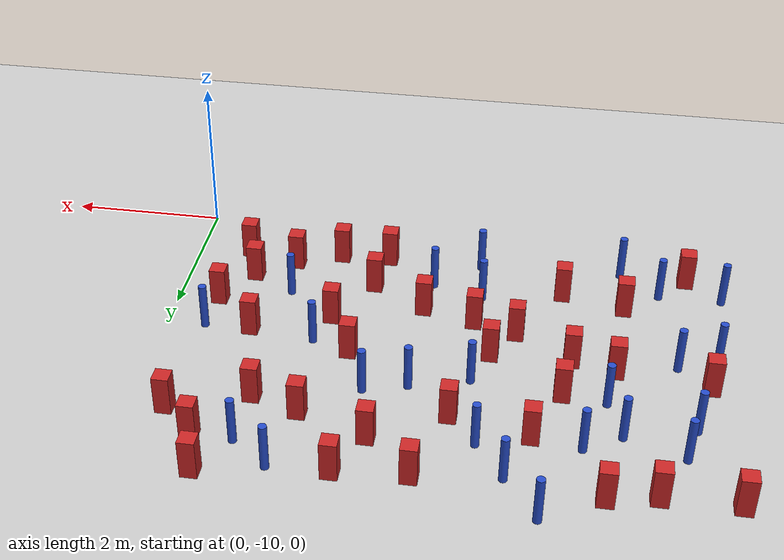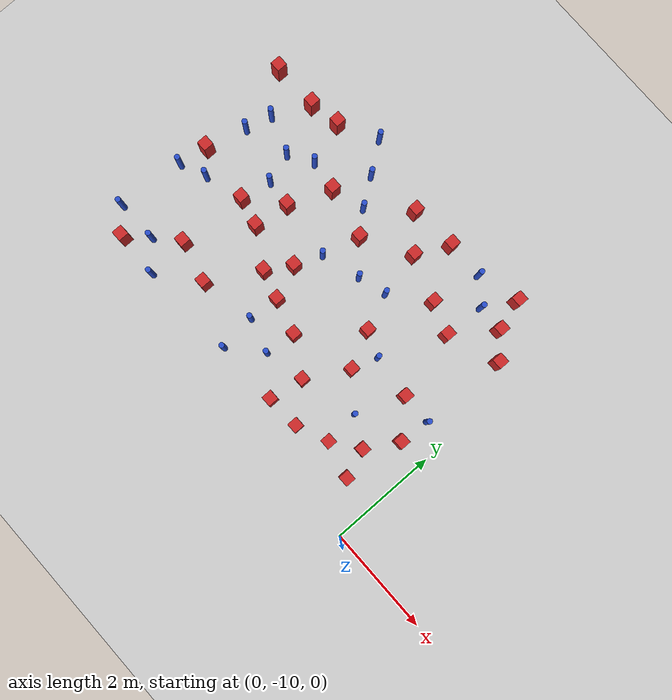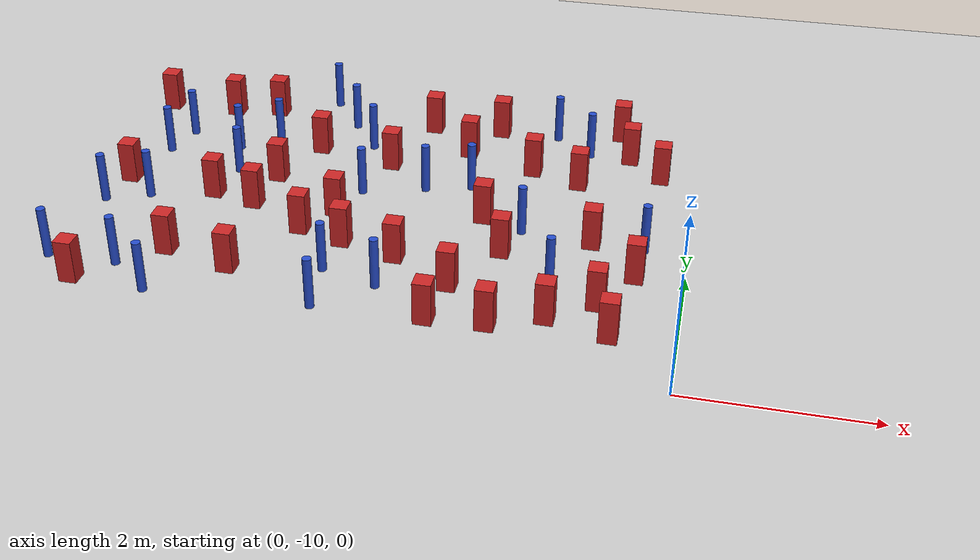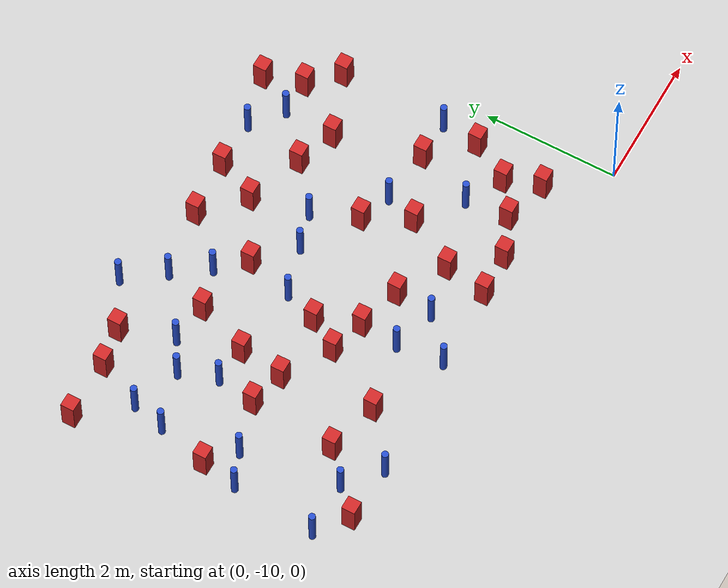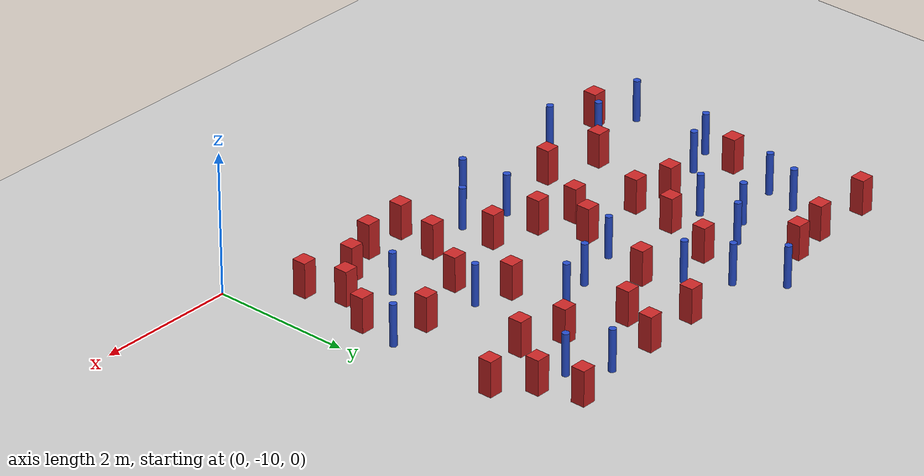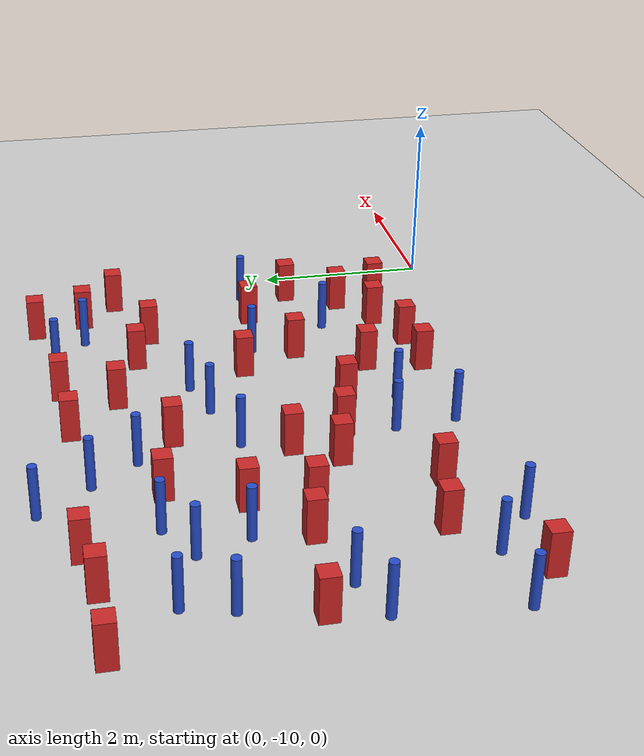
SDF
<sdf version="1.6">
 <world name="default">
  <model name="ground_plane">
   <static>1</static>
   <link name="link">
    <collision name="collision">
     <geometry><plane><normal>0 0 1</normal><size>100 100</size></plane></geometry>
     <surface><friction><ode><mu>100</mu><mu2>50</mu2></ode></friction></surface>
    </collision>
    <visual name="visual">
     <cast_shadows>0</cast_shadows>
     <geometry><plane><normal>0 0 1</normal><size>100 100</size></plane></geometry>
     <material>
      <ambient>1.0 1.0 1.0 1.0</ambient>
      <diffuse>0.8 0.8 0.8 1.0</diffuse>
      <specular>0.01 0.01 0.01 1.000000</specular>
     </material>
    </visual>
   </link>
  </model>
  <model name="pole_obstacle0">
   <static>true</static>
   <pose>-5.68199966664 -6.26441444535 2.88873142074e-08 -9.90536690842e-09 4.60219948965e-07 -1.20965994976e-07</pose>
   <link name="link">
    <pose>0 0 0.3 0 -0 0</pose>
    <inertial>
     <mass>1</mass>
     <inertia><ixx>0.145833</ixx><ixy>0</ixy><ixz>0</ixz><iyy>0.145833</iyy><iyz>0</iyz><izz>0.125</izz></inertia>
    </inertial>
    <collision name="collision">
     <geometry><cylinder><radius>0.05</radius><length>.6</length></cylinder></geometry>
    </collision>
    <visual name="visual">
     <geometry><cylinder><radius>0.05</radius><length>.6</length></cylinder></geometry>
     <material>
      <script><name>Gazebo/Blue</name><uri>file://media/materials/scripts/gazebo.material</uri></script>
     </material>
    </visual>
   </link>
  </model>
  <model name="pole_obstacle3">
   <static>true</static>
   <pose>-5.23848355303 -5.99416377618 2.88873142074e-08 -9.90536690842e-09 4.60219948965e-07 -1.20965994976e-07</pose>
   <link name="link">
    <pose>0 0 0.3 0 -0 0</pose>
    <inertial>
     <mass>1</mass>
     <inertia><ixx>0.145833</ixx><ixy>0</ixy><ixz>0</ixz><iyy>0.145833</iyy><iyz>0</iyz><izz>0.125</izz></inertia>
    </inertial>
    <collision name="collision">
     <geometry><cylinder><radius>0.05</radius><length>.6</length></cylinder></geometry>
    </collision>
    <visual name="visual">
     <geometry><cylinder><radius>0.05</radius><length>.6</length></cylinder></geometry>
     <material>
      <script><name>Gazebo/Blue</name><uri>file://media/materials/scripts/gazebo.material</uri></script>
     </material>
    </visual>
   </link>
  </model>
  <model name="square_post_obstacle6">
   <static>true</static>
   <pose>-6.45934820761 -9.41857495055 8.22691968438e-08 7.22125133819e-06 -7.54495500217e-07 2.29674213826e-05</pose>
   <link name="link">
    <pose>0 0 0.25 0 -0 0</pose>
    <inertial>
     <mass>100</mass>
     <inertia>
      <ixx>0.166667</ixx>
      <ixy>0</ixy>
      <ixz>0</ixz>
      <iyy>0.166667</iyy>
      <iyz>0</iyz>
      <izz>0.166667</izz>
     </inertia>
    </inertial>
    <collision name="collision"><geometry><box><size>.2 .2 .5</size></box></geometry></collision>
    <visual name="visual">
     <geometry><box><size>.2 .2 .5</size></box></geometry>
     <material>
      <script><name>Gazebo/Red</name><uri>file://media/materials/scripts/gazebo.material</uri></script>
     </material>
    </visual>
   </link>
  </model>
  <model name="square_post_obstacle9">
   <static>true</static>
   <pose>-4.65726586537 -6.07960110968 8.22691968438e-08 7.2212513382e-06 -7.54495500217e-07 2.29674213826e-05</pose>
   <link name="link">
    <pose>0 0 0.25 0 -0 0</pose>
    <inertial>
     <mass>100</mass>
     <inertia>
      <ixx>0.166667</ixx>
      <ixy>0</ixy>
      <ixz>0</ixz>
      <iyy>0.166667</iyy>
      <iyz>0</iyz>
      <izz>0.166667</izz>
     </inertia>
    </inertial>
    <collision name="collision"><geometry><box><size>.2 .2 .5</size></box></geometry></collision>
    <visual name="visual">
     <geometry><box><size>.2 .2 .5</size></box></geometry>
     <material>
      <script><name>Gazebo/Red</name><uri>file://media/materials/scripts/gazebo.material</uri></script>
     </material>
    </visual>
   </link>
  </model>
  <model name="square_post_obstacle16">
   <static>true</static>
   <pose>-5.66816697203 -8.67683960717 8.22691968438e-08 7.22125133819e-06 -7.54495500217e-07 2.29674213826e-05</pose>
   <link name="link">
    <pose>0 0 0.25 0 -0 0</pose>
    <inertial>
     <mass>100</mass>
     <inertia>
      <ixx>0.166667</ixx>
      <ixy>0</ixy>
      <ixz>0</ixz>
      <iyy>0.166667</iyy>
      <iyz>0</iyz>
      <izz>0.166667</izz>
     </inertia>
    </inertial>
    <collision name="collision"><geometry><box><size>.2 .2 .5</size></box></geometry></collision>
    <visual name="visual">
     <geometry><box><size>.2 .2 .5</size></box></geometry>
     <material>
      <script><name>Gazebo/Red</name><uri>file://media/materials/scripts/gazebo.material</uri></script>
     </material>
    </visual>
   </link>
  </model>
  <model name="square_post_obstacle19">
   <static>true</static>
   <pose>-0.851965355278 -5.54211889057 8.22691968438e-08 7.22125133819e-06 -7.54495500217e-07 2.29674213826e-05</pose>
   <link name="link">
    <pose>0 0 0.25 0 -0 0</pose>
    <inertial>
     <mass>100</mass>
     <inertia>
      <ixx>0.166667</ixx>
      <ixy>0</ixy>
      <ixz>0</ixz>
      <iyy>0.166667</iyy>
      <iyz>0</iyz>
      <izz>0.166667</izz>
     </inertia>
    </inertial>
    <collision name="collision"><geometry><box><size>.2 .2 .5</size></box></geometry></collision>
    <visual name="visual">
     <geometry><box><size>.2 .2 .5</size></box></geometry>
     <material>
      <script><name>Gazebo/Red</name><uri>file://media/materials/scripts/gazebo.material</uri></script>
     </material>
    </visual>
   </link>
  </model>
  <model name="square_post_obstacle23">
   <static>true</static>
   <pose>-1.39485794637 -6.29237957162 8.22691968438e-08 7.2212513382e-06 -7.54495500217e-07 2.29674213826e-05</pose>
   <link name="link">
    <pose>0 0 0.25 0 -0 0</pose>
    <inertial>
     <mass>100</mass>
     <inertia>
      <ixx>0.166667</ixx>
      <ixy>0</ixy>
      <ixz>0</ixz>
      <iyy>0.166667</iyy>
      <iyz>0</iyz>
      <izz>0.166667</izz>
     </inertia>
    </inertial>
    <collision name="collision"><geometry><box><size>.2 .2 .5</size></box></geometry></collision>
    <visual name="visual">
     <geometry><box><size>.2 .2 .5</size></box></geometry>
     <material>
      <script><name>Gazebo/Red</name><uri>file://media/materials/scripts/gazebo.material</uri></script>
     </material>
    </visual>
   </link>
  </model>
  <model name="pole_obstacle17">
   <static>true</static>
   <pose>-0.486869030169 -7.56090047871 2.88873142074e-08 -9.90536689758e-09 4.60219948991e-07 -1.20965994957e-07</pose>
   <link name="link">
    <pose>0 0 0.3 0 -0 0</pose>
    <inertial>
     <mass>1</mass>
     <inertia><ixx>0.145833</ixx><ixy>0</ixy><ixz>0</ixz><iyy>0.145833</iyy><iyz>0</iyz><izz>0.125</izz></inertia>
    </inertial>
    <collision name="collision">
     <geometry><cylinder><radius>0.05</radius><length>.6</length></cylinder></geometry>
    </collision>
    <visual name="visual">
     <geometry><cylinder><radius>0.05</radius><length>.6</length></cylinder></geometry>
     <material>
      <script><name>Gazebo/Blue</name><uri>file://media/materials/scripts/gazebo.material</uri></script>
     </material>
    </visual>
   </link>
  </model>
  <model name="square_post_obstacle27">
   <static>true</static>
   <pose>-2.36240675785 -7.28221465207 8.22691968438e-08 7.22125133819e-06 -7.54495500217e-07 2.29674213826e-05</pose>
   <link name="link">
    <pose>0 0 0.25 0 -0 0</pose>
    <inertial>
     <mass>100</mass>
     <inertia>
      <ixx>0.166667</ixx>
      <ixy>0</ixy>
      <ixz>0</ixz>
      <iyy>0.166667</iyy>
      <iyz>0</iyz>
      <izz>0.166667</izz>
     </inertia>
    </inertial>
    <collision name="collision"><geometry><box><size>.2 .2 .5</size></box></geometry></collision>
    <visual name="visual">
     <geometry><box><size>.2 .2 .5</size></box></geometry>
     <material>
      <script><name>Gazebo/Red</name><uri>file://media/materials/scripts/gazebo.material</uri></script>
     </material>
    </visual>
   </link>
  </model>
  <model name="pole_obstacle30">
   <static>true</static>
   <pose>-6.80623444083 -7.80608476634 2.88873142074e-08 -9.90536690842e-09 4.60219948965e-07 -1.20965994976e-07</pose>
   <link name="link">
    <pose>0 0 0.3 0 -0 0</pose>
    <inertial>
     <mass>1</mass>
     <inertia><ixx>0.145833</ixx><ixy>0</ixy><ixz>0</ixz><iyy>0.145833</iyy><iyz>0</iyz><izz>0.125</izz></inertia>
    </inertial>
    <collision name="collision">
     <geometry><cylinder><radius>0.05</radius><length>.6</length></cylinder></geometry>
    </collision>
    <visual name="visual">
     <geometry><cylinder><radius>0.05</radius><length>.6</length></cylinder></geometry>
     <material>
      <script><name>Gazebo/Blue</name><uri>file://media/materials/scripts/gazebo.material</uri></script>
     </material>
    </visual>
   </link>
  </model>
  <model name="pole_obstacle44">
   <static>true</static>
   <pose>-3.86706845383 -8.67823417328 2.88873142074e-08 -9.90536692318e-09 4.6021994893e-07 -1.20965994988e-07</pose>
   <link name="link">
    <pose>0 0 0.3 0 -0 0</pose>
    <inertial>
     <mass>1</mass>
     <inertia><ixx>0.145833</ixx><ixy>0</ixy><ixz>0</ixz><iyy>0.145833</iyy><iyz>0</iyz><izz>0.125</izz></inertia>
    </inertial>
    <collision name="collision">
     <geometry><cylinder><radius>0.05</radius><length>.6</length></cylinder></geometry>
    </collision>
    <visual name="visual">
     <geometry><cylinder><radius>0.05</radius><length>.6</length></cylinder></geometry>
     <material>
      <script><name>Gazebo/Blue</name><uri>file://media/materials/scripts/gazebo.material</uri></script>
     </material>
    </visual>
   </link>
  </model>
  <model name="square_post_obstacle42">
   <static>true</static>
   <pose>-6.07014322825 -5.33068150196 8.22691968438e-08 7.22125133819e-06 -7.54495500217e-07 2.29674213826e-05</pose>
   <link name="link">
    <pose>0 0 0.25 0 -0 0</pose>
    <inertial>
     <mass>100</mass>
     <inertia>
      <ixx>0.166667</ixx>
      <ixy>0</ixy>
      <ixz>0</ixz>
      <iyy>0.166667</iyy>
      <iyz>0</iyz>
      <izz>0.166667</izz>
     </inertia>
    </inertial>
    <collision name="collision"><geometry><box><size>.2 .2 .5</size></box></geometry></collision>
    <visual name="visual">
     <geometry><box><size>.2 .2 .5</size></box></geometry>
     <material>
      <script><name>Gazebo/Red</name><uri>file://media/materials/scripts/gazebo.material</uri></script>
     </material>
    </visual>
   </link>
  </model>
  <model name="square_post_obstacle46">
   <static>true</static>
   <pose>-6.70570960798 -7.26275233673 8.22691968438e-08 7.2212513382e-06 -7.54495500217e-07 2.29674213826e-05</pose>
   <link name="link">
    <pose>0 0 0.25 0 -0 0</pose>
    <inertial>
     <mass>100</mass>
     <inertia>
      <ixx>0.166667</ixx>
      <ixy>0</ixy>
      <ixz>0</ixz>
      <iyy>0.166667</iyy>
      <iyz>0</iyz>
      <izz>0.166667</izz>
     </inertia>
    </inertial>
    <collision name="collision"><geometry><box><size>.2 .2 .5</size></box></geometry></collision>
    <visual name="visual">
     <geometry><box><size>.2 .2 .5</size></box></geometry>
     <material>
      <script><name>Gazebo/Red</name><uri>file://media/materials/scripts/gazebo.material</uri></script>
     </material>
    </visual>
   </link>
  </model>
  <model name="square_post_obstacle50">
   <static>true</static>
   <pose>-5.50018695501 -5.22416886498 8.22691968438e-08 7.22125133819e-06 -7.54495500217e-07 2.29674213826e-05</pose>
   <link name="link">
    <pose>0 0 0.25 0 -0 0</pose>
    <inertial>
     <mass>100</mass>
     <inertia>
      <ixx>0.166667</ixx>
      <ixy>0</ixy>
      <ixz>0</ixz>
      <iyy>0.166667</iyy>
      <iyz>0</iyz>
      <izz>0.166667</izz>
     </inertia>
    </inertial>
    <collision name="collision"><geometry><box><size>.2 .2 .5</size></box></geometry></collision>
    <visual name="visual">
     <geometry><box><size>.2 .2 .5</size></box></geometry>
     <material>
      <script><name>Gazebo/Red</name><uri>file://media/materials/scripts/gazebo.material</uri></script>
     </material>
    </visual>
   </link>
  </model>
  <model name="pole_obstacle52">
   <static>true</static>
   <pose>-4.80466122462 -4.833465259 2.88873142074e-08 -9.90536690842e-09 4.60219948965e-07 -1.20965994976e-07</pose>
   <link name="link">
    <pose>0 0 0.3 0 -0 0</pose>
    <inertial>
     <mass>1</mass>
     <inertia><ixx>0.145833</ixx><ixy>0</ixy><ixz>0</ixz><iyy>0.145833</iyy><iyz>0</iyz><izz>0.125</izz></inertia>
    </inertial>
    <collision name="collision">
     <geometry><cylinder><radius>0.05</radius><length>.6</length></cylinder></geometry>
    </collision>
    <visual name="visual">
     <geometry><cylinder><radius>0.05</radius><length>.6</length></cylinder></geometry>
     <material>
      <script><name>Gazebo/Blue</name><uri>file://media/materials/scripts/gazebo.material</uri></script>
     </material>
    </visual>
   </link>
  </model>
  <model name="pole_obstacle64">
   <static>true</static>
   <pose>-1.80755796735 -5.16416907288 2.88873142074e-08 -9.90536689852e-09 4.60219948989e-07 -1.2096599496e-07</pose>
   <link name="link">
    <pose>0 0 0.3 0 -0 0</pose>
    <inertial>
     <mass>1</mass>
     <inertia><ixx>0.145833</ixx><ixy>0</ixy><ixz>0</ixz><iyy>0.145833</iyy><iyz>0</iyz><izz>0.125</izz></inertia>
    </inertial>
    <collision name="collision">
     <geometry><cylinder><radius>0.05</radius><length>.6</length></cylinder></geometry>
    </collision>
    <visual name="visual">
     <geometry><cylinder><radius>0.05</radius><length>.6</length></cylinder></geometry>
     <material>
      <script><name>Gazebo/Blue</name><uri>file://media/materials/scripts/gazebo.material</uri></script>
     </material>
    </visual>
   </link>
  </model>
  <model name="pole_obstacle65">
   <static>true</static>
   <pose>-3.88680683641 -6.98886133244 2.88873142074e-08 -9.90536689859e-09 4.60219948989e-07 -1.20965994961e-07</pose>
   <link name="link">
    <pose>0 0 0.3 0 -0 0</pose>
    <inertial>
     <mass>1</mass>
     <inertia><ixx>0.145833</ixx><ixy>0</ixy><ixz>0</ixz><iyy>0.145833</iyy><iyz>0</iyz><izz>0.125</izz></inertia>
    </inertial>
    <collision name="collision">
     <geometry><cylinder><radius>0.05</radius><length>.6</length></cylinder></geometry>
    </collision>
    <visual name="visual">
     <geometry><cylinder><radius>0.05</radius><length>.6</length></cylinder></geometry>
     <material>
      <script><name>Gazebo/Blue</name><uri>file://media/materials/scripts/gazebo.material</uri></script>
     </material>
    </visual>
   </link>
  </model>
  <model name="pole_obstacle72">
   <static>true</static>
   <pose>-6.51773497697 -6.50194190076 2.88873142074e-08 -9.90536690842e-09 4.60219948965e-07 -1.20965994976e-07</pose>
   <link name="link">
    <pose>0 0 0.3 0 -0 0</pose>
    <inertial>
     <mass>1</mass>
     <inertia><ixx>0.145833</ixx><ixy>0</ixy><ixz>0</ixz><iyy>0.145833</iyy><iyz>0</iyz><izz>0.125</izz></inertia>
    </inertial>
    <collision name="collision">
     <geometry><cylinder><radius>0.05</radius><length>.6</length></cylinder></geometry>
    </collision>
    <visual name="visual">
     <geometry><cylinder><radius>0.05</radius><length>.6</length></cylinder></geometry>
     <material>
      <script><name>Gazebo/Blue</name><uri>file://media/materials/scripts/gazebo.material</uri></script>
     </material>
    </visual>
   </link>
  </model>
  <model name="pole_obstacle78">
   <static>true</static>
   <pose>-6.39251049745 -6.00956394772 2.88873142074e-08 -9.90536690842e-09 4.60219948965e-07 -1.20965994976e-07</pose>
   <link name="link">
    <pose>0 0 0.3 0 -0 0</pose>
    <inertial>
     <mass>1</mass>
     <inertia><ixx>0.145833</ixx><ixy>0</ixy><ixz>0</ixz><iyy>0.145833</iyy><iyz>0</iyz><izz>0.125</izz></inertia>
    </inertial>
    <collision name="collision">
     <geometry><cylinder><radius>0.05</radius><length>.6</length></cylinder></geometry>
    </collision>
    <visual name="visual">
     <geometry><cylinder><radius>0.05</radius><length>.6</length></cylinder></geometry>
     <material>
      <script><name>Gazebo/Blue</name><uri>file://media/materials/scripts/gazebo.material</uri></script>
     </material>
    </visual>
   </link>
  </model>
  <model name="pole_obstacle80">
   <static>true</static>
   <pose>-4.04554786163 -5.88872726581 2.88873142074e-08 -9.90536691069e-09 4.6021994896e-07 -1.20965994979e-07</pose>
   <link name="link">
    <pose>0 0 0.3 0 -0 0</pose>
    <inertial>
     <mass>1</mass>
     <inertia><ixx>0.145833</ixx><ixy>0</ixy><ixz>0</ixz><iyy>0.145833</iyy><iyz>0</iyz><izz>0.125</izz></inertia>
    </inertial>
    <collision name="collision">
     <geometry><cylinder><radius>0.05</radius><length>.6</length></cylinder></geometry>
    </collision>
    <visual name="visual">
     <geometry><cylinder><radius>0.05</radius><length>.6</length></cylinder></geometry>
     <material>
      <script><name>Gazebo/Blue</name><uri>file://media/materials/scripts/gazebo.material</uri></script>
     </material>
    </visual>
   </link>
  </model>
  <model name="pole_obstacle83">
   <static>true</static>
   <pose>-6.32376703337 -7.60749913062 2.88873142074e-08 -9.90536690842e-09 4.60219948965e-07 -1.20965994976e-07</pose>
   <link name="link">
    <pose>0 0 0.3 0 -0 0</pose>
    <inertial>
     <mass>1</mass>
     <inertia><ixx>0.145833</ixx><ixy>0</ixy><ixz>0</ixz><iyy>0.145833</iyy><iyz>0</iyz><izz>0.125</izz></inertia>
    </inertial>
    <collision name="collision">
     <geometry><cylinder><radius>0.05</radius><length>.6</length></cylinder></geometry>
    </collision>
    <visual name="visual">
     <geometry><cylinder><radius>0.05</radius><length>.6</length></cylinder></geometry>
     <material>
      <script><name>Gazebo/Blue</name><uri>file://media/materials/scripts/gazebo.material</uri></script>
     </material>
    </visual>
   </link>
  </model>
  <model name="square_post_obstacle85">
   <static>true</static>
   <pose>-4.88569826754 -8.87693878102 8.22691968438e-08 7.22125133819e-06 -7.54495500217e-07 2.29674213826e-05</pose>
   <link name="link">
    <pose>0 0 0.25 0 -0 0</pose>
    <inertial>
     <mass>100</mass>
     <inertia>
      <ixx>0.166667</ixx>
      <ixy>0</ixy>
      <ixz>0</ixz>
      <iyy>0.166667</iyy>
      <iyz>0</iyz>
      <izz>0.166667</izz>
     </inertia>
    </inertial>
    <collision name="collision"><geometry><box><size>.2 .2 .5</size></box></geometry></collision>
    <visual name="visual">
     <geometry><box><size>.2 .2 .5</size></box></geometry>
     <material>
      <script><name>Gazebo/Red</name><uri>file://media/materials/scripts/gazebo.material</uri></script>
     </material>
    </visual>
   </link>
  </model>
  <model name="pole_obstacle101">
   <static>true</static>
   <pose>-3.79245349203 -9.367421757 2.88873142074e-08 -9.90536692318e-09 4.6021994893e-07 -1.20965994988e-07</pose>
   <link name="link">
    <pose>0 0 0.3 0 -0 0</pose>
    <inertial>
     <mass>1</mass>
     <inertia><ixx>0.145833</ixx><ixy>0</ixy><ixz>0</ixz><iyy>0.145833</iyy><iyz>0</iyz><izz>0.125</izz></inertia>
    </inertial>
    <collision name="collision">
     <geometry><cylinder><radius>0.05</radius><length>.6</length></cylinder></geometry>
    </collision>
    <visual name="visual">
     <geometry><cylinder><radius>0.05</radius><length>.6</length></cylinder></geometry>
     <material>
      <script><name>Gazebo/Blue</name><uri>file://media/materials/scripts/gazebo.material</uri></script>
     </material>
    </visual>
   </link>
  </model>
  <model name="square_post_obstacle89">
   <static>true</static>
   <pose>-1.98007110624 -6.08599031361 8.22691968438e-08 7.2212513382e-06 -7.54495500217e-07 2.29674213826e-05</pose>
   <link name="link">
    <pose>0 0 0.25 0 -0 0</pose>
    <inertial>
     <mass>100</mass>
     <inertia>
      <ixx>0.166667</ixx>
      <ixy>0</ixy>
      <ixz>0</ixz>
      <iyy>0.166667</iyy>
      <iyz>0</iyz>
      <izz>0.166667</izz>
     </inertia>
    </inertial>
    <collision name="collision"><geometry><box><size>.2 .2 .5</size></box></geometry></collision>
    <visual name="visual">
     <geometry><box><size>.2 .2 .5</size></box></geometry>
     <material>
      <script><name>Gazebo/Red</name><uri>file://media/materials/scripts/gazebo.material</uri></script>
     </material>
    </visual>
   </link>
  </model>
  <model name="square_post_obstacle92">
   <static>true</static>
   <pose>-3.15952154864 -8.29442349124 8.22691968438e-08 7.22125133819e-06 -7.54495500217e-07 2.29674213826e-05</pose>
   <link name="link">
    <pose>0 0 0.25 0 -0 0</pose>
    <inertial>
     <mass>100</mass>
     <inertia>
      <ixx>0.166667</ixx>
      <ixy>0</ixy>
      <ixz>0</ixz>
      <iyy>0.166667</iyy>
      <iyz>0</iyz>
      <izz>0.166667</izz>
     </inertia>
    </inertial>
    <collision name="collision"><geometry><box><size>.2 .2 .5</size></box></geometry></collision>
    <visual name="visual">
     <geometry><box><size>.2 .2 .5</size></box></geometry>
     <material>
      <script><name>Gazebo/Red</name><uri>file://media/materials/scripts/gazebo.material</uri></script>
     </material>
    </visual>
   </link>
  </model>
  <model name="square_post_obstacle93">
   <static>true</static>
   <pose>-5.05514182641 -7.53107148534 8.22691968438e-08 7.2212513382e-06 -7.54495500217e-07 2.29674213826e-05</pose>
   <link name="link">
    <pose>0 0 0.25 0 -0 0</pose>
    <inertial>
     <mass>100</mass>
     <inertia>
      <ixx>0.166667</ixx>
      <ixy>0</ixy>
      <ixz>0</ixz>
      <iyy>0.166667</iyy>
      <iyz>0</iyz>
      <izz>0.166667</izz>
     </inertia>
    </inertial>
    <collision name="collision"><geometry><box><size>.2 .2 .5</size></box></geometry></collision>
    <visual name="visual">
     <geometry><box><size>.2 .2 .5</size></box></geometry>
     <material>
      <script><name>Gazebo/Red</name><uri>file://media/materials/scripts/gazebo.material</uri></script>
     </material>
    </visual>
   </link>
  </model>
  <model name="pole_obstacle109">
   <static>true</static>
   <pose>-3.16647335495 -6.77127378841 2.88873142074e-08 -9.90536689859e-09 4.60219948989e-07 -1.20965994961e-07</pose>
   <link name="link">
    <pose>0 0 0.3 0 -0 0</pose>
    <inertial>
     <mass>1</mass>
     <inertia><ixx>0.145833</ixx><ixy>0</ixy><ixz>0</ixz><iyy>0.145833</iyy><iyz>0</iyz><izz>0.125</izz></inertia>
    </inertial>
    <collision name="collision">
     <geometry><cylinder><radius>0.05</radius><length>.6</length></cylinder></geometry>
    </collision>
    <visual name="visual">
     <geometry><cylinder><radius>0.05</radius><length>.6</length></cylinder></geometry>
     <material>
      <script><name>Gazebo/Blue</name><uri>file://media/materials/scripts/gazebo.material</uri></script>
     </material>
    </visual>
   </link>
  </model>
  <model name="pole_obstacle118">
   <static>true</static>
   <pose>-1.35392968282 -5.52374608789 2.88873142074e-08 -9.90536689852e-09 4.60219948989e-07 -1.2096599496e-07</pose>
   <link name="link">
    <pose>0 0 0.3 0 -0 0</pose>
    <inertial>
     <mass>1</mass>
     <inertia><ixx>0.145833</ixx><ixy>0</ixy><ixz>0</ixz><iyy>0.145833</iyy><iyz>0</iyz><izz>0.125</izz></inertia>
    </inertial>
    <collision name="collision">
     <geometry><cylinder><radius>0.05</radius><length>.6</length></cylinder></geometry>
    </collision>
    <visual name="visual">
     <geometry><cylinder><radius>0.05</radius><length>.6</length></cylinder></geometry>
     <material>
      <script><name>Gazebo/Blue</name><uri>file://media/materials/scripts/gazebo.material</uri></script>
     </material>
    </visual>
   </link>
  </model>
  <model name="square_post_obstacle110">
   <static>true</static>
   <pose>-0.537586733014 -8.12923019691 8.22691968438e-08 7.22125133819e-06 -7.54495500217e-07 2.29674213826e-05</pose>
   <link name="link">
    <pose>0 0 0.25 0 -0 0</pose>
    <inertial>
     <mass>100</mass>
     <inertia>
      <ixx>0.166667</ixx>
      <ixy>0</ixy>
      <ixz>0</ixz>
      <iyy>0.166667</iyy>
      <iyz>0</iyz>
      <izz>0.166667</izz>
     </inertia>
    </inertial>
    <collision name="collision"><geometry><box><size>.2 .2 .5</size></box></geometry></collision>
    <visual name="visual">
     <geometry><box><size>.2 .2 .5</size></box></geometry>
     <material>
      <script><name>Gazebo/Red</name><uri>file://media/materials/scripts/gazebo.material</uri></script>
     </material>
    </visual>
   </link>
  </model>
  <model name="pole_obstacle121">
   <static>true</static>
   <pose>-6.90834604143 -9.06588769216 2.88873142074e-08 -9.9053668967e-09 4.60219948993e-07 -1.20965994957e-07</pose>
   <link name="link">
    <pose>0 0 0.3 0 -0 0</pose>
    <inertial>
     <mass>1</mass>
     <inertia><ixx>0.145833</ixx><ixy>0</ixy><ixz>0</ixz><iyy>0.145833</iyy><iyz>0</iyz><izz>0.125</izz></inertia>
    </inertial>
    <collision name="collision">
     <geometry><cylinder><radius>0.05</radius><length>.6</length></cylinder></geometry>
    </collision>
    <visual name="visual">
     <geometry><cylinder><radius>0.05</radius><length>.6</length></cylinder></geometry>
     <material>
      <script><name>Gazebo/Blue</name><uri>file://media/materials/scripts/gazebo.material</uri></script>
     </material>
    </visual>
   </link>
  </model>
  <model name="pole_obstacle122">
   <static>true</static>
   <pose>-5.49629941499 -6.81681727505 2.88873142074e-08 -9.90536690842e-09 4.60219948965e-07 -1.20965994976e-07</pose>
   <link name="link">
    <pose>0 0 0.3 0 -0 0</pose>
    <inertial>
     <mass>1</mass>
     <inertia><ixx>0.145833</ixx><ixy>0</ixy><ixz>0</ixz><iyy>0.145833</iyy><iyz>0</iyz><izz>0.125</izz></inertia>
    </inertial>
    <collision name="collision">
     <geometry><cylinder><radius>0.05</radius><length>.6</length></cylinder></geometry>
    </collision>
    <visual name="visual">
     <geometry><cylinder><radius>0.05</radius><length>.6</length></cylinder></geometry>
     <material>
      <script><name>Gazebo/Blue</name><uri>file://media/materials/scripts/gazebo.material</uri></script>
     </material>
    </visual>
   </link>
  </model>
  <model name="pole_obstacle127">
   <static>true</static>
   <pose>-4.40043488833 -5.38861837221 2.88873142074e-08 -9.90536690842e-09 4.60219948965e-07 -1.20965994976e-07</pose>
   <link name="link">
    <pose>0 0 0.3 0 -0 0</pose>
    <inertial>
     <mass>1</mass>
     <inertia><ixx>0.145833</ixx><ixy>0</ixy><ixz>0</ixz><iyy>0.145833</iyy><iyz>0</iyz><izz>0.125</izz></inertia>
    </inertial>
    <collision name="collision">
     <geometry><cylinder><radius>0.05</radius><length>.6</length></cylinder></geometry>
    </collision>
    <visual name="visual">
     <geometry><cylinder><radius>0.05</radius><length>.6</length></cylinder></geometry>
     <material>
      <script><name>Gazebo/Blue</name><uri>file://media/materials/scripts/gazebo.material</uri></script>
     </material>
    </visual>
   </link>
  </model>
  <model name="square_post_obstacle114">
   <static>true</static>
   <pose>-1.36163023008 -9.06668867546 8.22691968438e-08 7.2212513382e-06 -7.54495500217e-07 2.29674213826e-05</pose>
   <link name="link">
    <pose>0 0 0.25 0 -0 0</pose>
    <inertial>
     <mass>100</mass>
     <inertia>
      <ixx>0.166667</ixx>
      <ixy>0</ixy>
      <ixz>0</ixz>
      <iyy>0.166667</iyy>
      <iyz>0</iyz>
      <izz>0.166667</izz>
     </inertia>
    </inertial>
    <collision name="collision"><geometry><box><size>.2 .2 .5</size></box></geometry></collision>
    <visual name="visual">
     <geometry><box><size>.2 .2 .5</size></box></geometry>
     <material>
      <script><name>Gazebo/Red</name><uri>file://media/materials/scripts/gazebo.material</uri></script>
     </material>
    </visual>
   </link>
  </model>
  <model name="pole_obstacle131">
   <static>true</static>
   <pose>-6.11398581546 -9.05525061738 2.88873142074e-08 -9.9053668967e-09 4.60219948993e-07 -1.20965994957e-07</pose>
   <link name="link">
    <pose>0 0 0.3 0 -0 0</pose>
    <inertial>
     <mass>1</mass>
     <inertia><ixx>0.145833</ixx><ixy>0</ixy><ixz>0</ixz><iyy>0.145833</iyy><iyz>0</iyz><izz>0.125</izz></inertia>
    </inertial>
    <collision name="collision">
     <geometry><cylinder><radius>0.05</radius><length>.6</length></cylinder></geometry>
    </collision>
    <visual name="visual">
     <geometry><cylinder><radius>0.05</radius><length>.6</length></cylinder></geometry>
     <material>
      <script><name>Gazebo/Blue</name><uri>file://media/materials/scripts/gazebo.material</uri></script>
     </material>
    </visual>
   </link>
  </model>
  <model name="square_post_obstacle117">
   <static>true</static>
   <pose>-3.69930239789 -6.29247191571 8.22691968438e-08 7.22125133819e-06 -7.54495500217e-07 2.29674213826e-05</pose>
   <link name="link">
    <pose>0 0 0.25 0 -0 0</pose>
    <inertial>
     <mass>100</mass>
     <inertia>
      <ixx>0.166667</ixx>
      <ixy>0</ixy>
      <ixz>0</ixz>
      <iyy>0.166667</iyy>
      <iyz>0</iyz>
      <izz>0.166667</izz>
     </inertia>
    </inertial>
    <collision name="collision"><geometry><box><size>.2 .2 .5</size></box></geometry></collision>
    <visual name="visual">
     <geometry><box><size>.2 .2 .5</size></box></geometry>
     <material>
      <script><name>Gazebo/Red</name><uri>file://media/materials/scripts/gazebo.material</uri></script>
     </material>
    </visual>
   </link>
  </model>
  <model name="pole_obstacle138">
   <static>true</static>
   <pose>-1.41628480973 -8.41860340499 2.88873142074e-08 -9.90536690474e-09 4.60219948974e-07 -1.2096599497e-07</pose>
   <link name="link">
    <pose>0 0 0.3 0 -0 0</pose>
    <inertial>
     <mass>1</mass>
     <inertia><ixx>0.145833</ixx><ixy>0</ixy><ixz>0</ixz><iyy>0.145833</iyy><iyz>0</iyz><izz>0.125</izz></inertia>
    </inertial>
    <collision name="collision">
     <geometry><cylinder><radius>0.05</radius><length>.6</length></cylinder></geometry>
    </collision>
    <visual name="visual">
     <geometry><cylinder><radius>0.05</radius><length>.6</length></cylinder></geometry>
     <material>
      <script><name>Gazebo/Blue</name><uri>file://media/materials/scripts/gazebo.material</uri></script>
     </material>
    </visual>
   </link>
  </model>
  <model name="square_post_obstacle126">
   <static>true</static>
   <pose>-1.93788624579 -9.30921719751 8.22691968438e-08 7.22125133819e-06 -7.54495500217e-07 2.29674213826e-05</pose>
   <link name="link">
    <pose>0 0 0.25 0 -0 0</pose>
    <inertial>
     <mass>100</mass>
     <inertia>
      <ixx>0.166667</ixx>
      <ixy>0</ixy>
      <ixz>0</ixz>
      <iyy>0.166667</iyy>
      <iyz>0</iyz>
      <izz>0.166667</izz>
     </inertia>
    </inertial>
    <collision name="collision"><geometry><box><size>.2 .2 .5</size></box></geometry></collision>
    <visual name="visual">
     <geometry><box><size>.2 .2 .5</size></box></geometry>
     <material>
      <script><name>Gazebo/Red</name><uri>file://media/materials/scripts/gazebo.material</uri></script>
     </material>
    </visual>
   </link>
  </model>
  <model name="pole_obstacle145">
   <static>true</static>
   <pose>-3.22317030753 -8.86334335085 2.88873142074e-08 -9.9053668994e-09 4.60219948987e-07 -1.20965994963e-07</pose>
   <link name="link">
    <pose>0 0 0.3 0 -0 0</pose>
    <inertial>
     <mass>1</mass>
     <inertia><ixx>0.145833</ixx><ixy>0</ixy><ixz>0</ixz><iyy>0.145833</iyy><iyz>0</iyz><izz>0.125</izz></inertia>
    </inertial>
    <collision name="collision">
     <geometry><cylinder><radius>0.05</radius><length>.6</length></cylinder></geometry>
    </collision>
    <visual name="visual">
     <geometry><cylinder><radius>0.05</radius><length>.6</length></cylinder></geometry>
     <material>
      <script><name>Gazebo/Blue</name><uri>file://media/materials/scripts/gazebo.material</uri></script>
     </material>
    </visual>
   </link>
  </model>
  <model name="square_post_obstacle136">
   <static>true</static>
   <pose>-2.57404072264 -9.33846679117 8.22691968438e-08 7.22125133819e-06 -7.54495500217e-07 2.29674213826e-05</pose>
   <link name="link">
    <pose>0 0 0.25 0 -0 0</pose>
    <inertial>
     <mass>100</mass>
     <inertia>
      <ixx>0.166667</ixx>
      <ixy>0</ixy>
      <ixz>0</ixz>
      <iyy>0.166667</iyy>
      <iyz>0</iyz>
      <izz>0.166667</izz>
     </inertia>
    </inertial>
    <collision name="collision"><geometry><box><size>.2 .2 .5</size></box></geometry></collision>
    <visual name="visual">
     <geometry><box><size>.2 .2 .5</size></box></geometry>
     <material>
      <script><name>Gazebo/Red</name><uri>file://media/materials/scripts/gazebo.material</uri></script>
     </material>
    </visual>
   </link>
  </model>
  <model name="square_post_obstacle138">
   <static>true</static>
   <pose>-5.58713596869 -7.39930028868 8.22691968438e-08 7.2212513382e-06 -7.54495500217e-07 2.29674213826e-05</pose>
   <link name="link">
    <pose>0 0 0.25 0 -0 0</pose>
    <inertial>
     <mass>100</mass>
     <inertia>
      <ixx>0.166667</ixx>
      <ixy>0</ixy>
      <ixz>0</ixz>
      <iyy>0.166667</iyy>
      <iyz>0</iyz>
      <izz>0.166667</izz>
     </inertia>
    </inertial>
    <collision name="collision"><geometry><box><size>.2 .2 .5</size></box></geometry></collision>
    <visual name="visual">
     <geometry><box><size>.2 .2 .5</size></box></geometry>
     <material>
      <script><name>Gazebo/Red</name><uri>file://media/materials/scripts/gazebo.material</uri></script>
     </material>
    </visual>
   </link>
  </model>
  <model name="square_post_obstacle147">
   <static>true</static>
   <pose>-3.39418630086 -5.24039231226 8.22691968438e-08 7.2212513382e-06 -7.54495500217e-07 2.29674213826e-05</pose>
   <link name="link">
    <pose>0 0 0.25 0 -0 0</pose>
    <inertial>
     <mass>100</mass>
     <inertia>
      <ixx>0.166667</ixx>
      <ixy>0</ixy>
      <ixz>0</ixz>
      <iyy>0.166667</iyy>
      <iyz>0</iyz>
      <izz>0.166667</izz>
     </inertia>
    </inertial>
    <collision name="collision"><geometry><box><size>.2 .2 .5</size></box></geometry></collision>
    <visual name="visual">
     <geometry><box><size>.2 .2 .5</size></box></geometry>
     <material>
      <script><name>Gazebo/Red</name><uri>file://media/materials/scripts/gazebo.material</uri></script>
     </material>
    </visual>
   </link>
  </model>
  <model name="square_post_obstacle150">
   <static>true</static>
   <pose>-2.82754107715 -5.78756205454 8.22691968438e-08 7.22125133819e-06 -7.54495500217e-07 2.29674213826e-05</pose>
   <link name="link">
    <pose>0 0 0.25 0 -0 0</pose>
    <inertial>
     <mass>100</mass>
     <inertia>
      <ixx>0.166667</ixx>
      <ixy>0</ixy>
      <ixz>0</ixz>
      <iyy>0.166667</iyy>
      <iyz>0</iyz>
      <izz>0.166667</izz>
     </inertia>
    </inertial>
    <collision name="collision"><geometry><box><size>.2 .2 .5</size></box></geometry></collision>
    <visual name="visual">
     <geometry><box><size>.2 .2 .5</size></box></geometry>
     <material>
      <script><name>Gazebo/Red</name><uri>file://media/materials/scripts/gazebo.material</uri></script>
     </material>
    </visual>
   </link>
  </model>
  <model name="square_post_obstacle152">
   <static>true</static>
   <pose>-0.688096280147 -9.24263969205 8.22691968438e-08 7.22125133819e-06 -7.54495500217e-07 2.29674213826e-05</pose>
   <link name="link">
    <pose>0 0 0.25 0 -0 0</pose>
    <inertial>
     <mass>100</mass>
     <inertia>
      <ixx>0.166667</ixx>
      <ixy>0</ixy>
      <ixz>0</ixz>
      <iyy>0.166667</iyy>
      <iyz>0</iyz>
      <izz>0.166667</izz>
     </inertia>
    </inertial>
    <collision name="collision"><geometry><box><size>.2 .2 .5</size></box></geometry></collision>
    <visual name="visual">
     <geometry><box><size>.2 .2 .5</size></box></geometry>
     <material>
      <script><name>Gazebo/Red</name><uri>file://media/materials/scripts/gazebo.material</uri></script>
     </material>
    </visual>
   </link>
  </model>
  <model name="pole_obstacle170">
   <static>true</static>
   <pose>-1.8850401783 -7.46129882992 2.88873142074e-08 -9.90536689852e-09 4.60219948989e-07 -1.2096599496e-07</pose>
   <link name="link">
    <pose>0 0 0.3 0 -0 0</pose>
    <inertial>
     <mass>1</mass>
     <inertia><ixx>0.145833</ixx><ixy>0</ixy><ixz>0</ixz><iyy>0.145833</iyy><iyz>0</iyz><izz>0.125</izz></inertia>
    </inertial>
    <collision name="collision">
     <geometry><cylinder><radius>0.05</radius><length>.6</length></cylinder></geometry>
    </collision>
    <visual name="visual">
     <geometry><cylinder><radius>0.05</radius><length>.6</length></cylinder></geometry>
     <material>
      <script><name>Gazebo/Blue</name><uri>file://media/materials/scripts/gazebo.material</uri></script>
     </material>
    </visual>
   </link>
  </model>
  <model name="square_post_obstacle163">
   <static>true</static>
   <pose>-6.94776016498 -5.34124842492 8.22691968438e-08 7.22125133819e-06 -7.54495500217e-07 2.29674213826e-05</pose>
   <link name="link">
    <pose>0 0 0.25 0 -0 0</pose>
    <inertial>
     <mass>100</mass>
     <inertia>
      <ixx>0.166667</ixx>
      <ixy>0</ixy>
      <ixz>0</ixz>
      <iyy>0.166667</iyy>
      <iyz>0</iyz>
      <izz>0.166667</izz>
     </inertia>
    </inertial>
    <collision name="collision"><geometry><box><size>.2 .2 .5</size></box></geometry></collision>
    <visual name="visual">
     <geometry><box><size>.2 .2 .5</size></box></geometry>
     <material>
      <script><name>Gazebo/Red</name><uri>file://media/materials/scripts/gazebo.material</uri></script>
     </material>
    </visual>
   </link>
  </model>
  <model name="pole_obstacle174">
   <static>true</static>
   <pose>-2.63983224932 -6.61684595486 2.88873142074e-08 -9.90536689859e-09 4.60219948989e-07 -1.20965994961e-07</pose>
   <link name="link">
    <pose>0 0 0.3 0 -0 0</pose>
    <inertial>
     <mass>1</mass>
     <inertia><ixx>0.145833</ixx><ixy>0</ixy><ixz>0</ixz><iyy>0.145833</iyy><iyz>0</iyz><izz>0.125</izz></inertia>
    </inertial>
    <collision name="collision">
     <geometry><cylinder><radius>0.05</radius><length>.6</length></cylinder></geometry>
    </collision>
    <visual name="visual">
     <geometry><cylinder><radius>0.05</radius><length>.6</length></cylinder></geometry>
     <material>
      <script><name>Gazebo/Blue</name><uri>file://media/materials/scripts/gazebo.material</uri></script>
     </material>
    </visual>
   </link>
  </model>
  <model name="square_post_obstacle170">
   <static>true</static>
   <pose>-4.35240916072 -7.95102861966 8.22691968438e-08 7.2212513382e-06 -7.54495500217e-07 2.29674213826e-05</pose>
   <link name="link">
    <pose>0 0 0.25 0 -0 0</pose>
    <inertial>
     <mass>100</mass>
     <inertia>
      <ixx>0.166667</ixx>
      <ixy>0</ixy>
      <ixz>0</ixz>
      <iyy>0.166667</iyy>
      <iyz>0</iyz>
      <izz>0.166667</izz>
     </inertia>
    </inertial>
    <collision name="collision"><geometry><box><size>.2 .2 .5</size></box></geometry></collision>
    <visual name="visual">
     <geometry><box><size>.2 .2 .5</size></box></geometry>
     <material>
      <script><name>Gazebo/Red</name><uri>file://media/materials/scripts/gazebo.material</uri></script>
     </material>
    </visual>
   </link>
  </model>
  <model name="square_post_obstacle171">
   <static>true</static>
   <pose>-2.46905760416 -8.70234547081 8.22691968438e-08 7.22125133819e-06 -7.54495500217e-07 2.29674213826e-05</pose>
   <link name="link">
    <pose>0 0 0.25 0 -0 0</pose>
    <inertial>
     <mass>100</mass>
     <inertia>
      <ixx>0.166667</ixx>
      <ixy>0</ixy>
      <ixz>0</ixz>
      <iyy>0.166667</iyy>
      <iyz>0</iyz>
      <izz>0.166667</izz>
     </inertia>
    </inertial>
    <collision name="collision"><geometry><box><size>.2 .2 .5</size></box></geometry></collision>
    <visual name="visual">
     <geometry><box><size>.2 .2 .5</size></box></geometry>
     <material>
      <script><name>Gazebo/Red</name><uri>file://media/materials/scripts/gazebo.material</uri></script>
     </material>
    </visual>
   </link>
  </model>
  <model name="square_post_obstacle178">
   <static>true</static>
   <pose>-4.9701552718 -6.87010792241 8.22691968438e-08 7.22125133819e-06 -7.54495500217e-07 2.29674213826e-05</pose>
   <link name="link">
    <pose>0 0 0.25 0 -0 0</pose>
    <inertial>
     <mass>100</mass>
     <inertia>
      <ixx>0.166667</ixx>
      <ixy>0</ixy>
      <ixz>0</ixz>
      <iyy>0.166667</iyy>
      <iyz>0</iyz>
      <izz>0.166667</izz>
     </inertia>
    </inertial>
    <collision name="collision"><geometry><box><size>.2 .2 .5</size></box></geometry></collision>
    <visual name="visual">
     <geometry><box><size>.2 .2 .5</size></box></geometry>
     <material>
      <script><name>Gazebo/Red</name><uri>file://media/materials/scripts/gazebo.material</uri></script>
     </material>
    </visual>
   </link>
  </model>
  <model name="square_post_obstacle179">
   <static>true</static>
   <pose>-3.81620126963 -8.11054437261 8.22691968438e-08 7.2212513382e-06 -7.54495500217e-07 2.29674213826e-05</pose>
   <link name="link">
    <pose>0 0 0.25 0 -0 0</pose>
    <inertial>
     <mass>100</mass>
     <inertia>
      <ixx>0.166667</ixx>
      <ixy>0</ixy>
      <ixz>0</ixz>
      <iyy>0.166667</iyy>
      <iyz>0</iyz>
      <izz>0.166667</izz>
     </inertia>
    </inertial>
    <collision name="collision"><geometry><box><size>.2 .2 .5</size></box></geometry></collision>
    <visual name="visual">
     <geometry><box><size>.2 .2 .5</size></box></geometry>
     <material>
      <script><name>Gazebo/Red</name><uri>file://media/materials/scripts/gazebo.material</uri></script>
     </material>
    </visual>
   </link>
  </model>
  <model name="square_post_obstacle186">
   <static>true</static>
   <pose>-1.07650528526 -7.55533793099 8.22691968438e-08 7.22125133819e-06 -7.54495500217e-07 2.29674213826e-05</pose>
   <link name="link">
    <pose>0 0 0.25 0 -0 0</pose>
    <inertial>
     <mass>100</mass>
     <inertia>
      <ixx>0.166667</ixx>
      <ixy>0</ixy>
      <ixz>0</ixz>
      <iyy>0.166667</iyy>
      <iyz>0</iyz>
      <izz>0.166667</izz>
     </inertia>
    </inertial>
    <collision name="collision"><geometry><box><size>.2 .2 .5</size></box></geometry></collision>
    <visual name="visual">
     <geometry><box><size>.2 .2 .5</size></box></geometry>
     <material>
      <script><name>Gazebo/Red</name><uri>file://media/materials/scripts/gazebo.material</uri></script>
     </material>
    </visual>
   </link>
  </model>
  <model name="square_post_obstacle193">
   <static>true</static>
   <pose>-2.03571284415 -7.9427432203 8.22691968438e-08 7.2212513382e-06 -7.54495500217e-07 2.29674213826e-05</pose>
   <link name="link">
    <pose>0 0 0.25 0 -0 0</pose>
    <inertial>
     <mass>100</mass>
     <inertia>
      <ixx>0.166667</ixx>
      <ixy>0</ixy>
      <ixz>0</ixz>
      <iyy>0.166667</iyy>
      <iyz>0</iyz>
      <izz>0.166667</izz>
     </inertia>
    </inertial>
    <collision name="collision"><geometry><box><size>.2 .2 .5</size></box></geometry></collision>
    <visual name="visual">
     <geometry><box><size>.2 .2 .5</size></box></geometry>
     <material>
      <script><name>Gazebo/Red</name><uri>file://media/materials/scripts/gazebo.material</uri></script>
     </material>
    </visual>
   </link>
  </model>
  <model name="square_post_obstacle204">
   <static>true</static>
   <pose>-0.878336970736 -8.71610034479 8.22691968438e-08 7.22125133819e-06 -7.54495500217e-07 2.29674213826e-05</pose>
   <link name="link">
    <pose>0 0 0.25 0 -0 0</pose>
    <inertial>
     <mass>100</mass>
     <inertia>
      <ixx>0.166667</ixx>
      <ixy>0</ixy>
      <ixz>0</ixz>
      <iyy>0.166667</iyy>
      <iyz>0</iyz>
      <izz>0.166667</izz>
     </inertia>
    </inertial>
    <collision name="collision"><geometry><box><size>.2 .2 .5</size></box></geometry></collision>
    <visual name="visual">
     <geometry><box><size>.2 .2 .5</size></box></geometry>
     <material>
      <script><name>Gazebo/Red</name><uri>file://media/materials/scripts/gazebo.material</uri></script>
     </material>
    </visual>
   </link>
  </model>
  <model name="square_post_obstacle205">
   <static>true</static>
   <pose>-4.07194927056 -7.49437757156 8.22691968438e-08 7.2212513382e-06 -7.54495500217e-07 2.29674213826e-05</pose>
   <link name="link">
    <pose>0 0 0.25 0 -0 0</pose>
    <inertial>
     <mass>100</mass>
     <inertia>
      <ixx>0.166667</ixx>
      <ixy>0</ixy>
      <ixz>0</ixz>
      <iyy>0.166667</iyy>
      <iyz>0</iyz>
      <izz>0.166667</izz>
     </inertia>
    </inertial>
    <collision name="collision"><geometry><box><size>.2 .2 .5</size></box></geometry></collision>
    <visual name="visual">
     <geometry><box><size>.2 .2 .5</size></box></geometry>
     <material>
      <script><name>Gazebo/Red</name><uri>file://media/materials/scripts/gazebo.material</uri></script>
     </material>
    </visual>
   </link>
  </model>
  <model name="square_post_obstacle209">
   <static>true</static>
   <pose>-2.53220730149 -5.17527019678 8.22691968438e-08 7.22125133819e-06 -7.54495500217e-07 2.29674213826e-05</pose>
   <link name="link">
    <pose>0 0 0.25 0 -0 0</pose>
    <inertial>
     <mass>100</mass>
     <inertia>
      <ixx>0.166667</ixx>
      <ixy>0</ixy>
      <ixz>0</ixz>
      <iyy>0.166667</iyy>
      <iyz>0</iyz>
      <izz>0.166667</izz>
     </inertia>
    </inertial>
    <collision name="collision"><geometry><box><size>.2 .2 .5</size></box></geometry></collision>
    <visual name="visual">
     <geometry><box><size>.2 .2 .5</size></box></geometry>
     <material>
      <script><name>Gazebo/Red</name><uri>file://media/materials/scripts/gazebo.material</uri></script>
     </material>
    </visual>
   </link>
  </model>
  <model name="square_post_obstacle211">
   <static>true</static>
   <pose>-1.02603745327 -4.96553174038 8.22691968438e-08 7.22125133819e-06 -7.54495500217e-07 2.29674213826e-05</pose>
   <link name="link">
    <pose>0 0 0.25 0 -0 0</pose>
    <inertial>
     <mass>100</mass>
     <inertia>
      <ixx>0.166667</ixx>
      <ixy>0</ixy>
      <ixz>0</ixz>
      <iyy>0.166667</iyy>
      <iyz>0</iyz>
      <izz>0.166667</izz>
     </inertia>
    </inertial>
    <collision name="collision"><geometry><box><size>.2 .2 .5</size></box></geometry></collision>
    <visual name="visual">
     <geometry><box><size>.2 .2 .5</size></box></geometry>
     <material>
      <script><name>Gazebo/Red</name><uri>file://media/materials/scripts/gazebo.material</uri></script>
     </material>
    </visual>
   </link>
  </model>
  <model name="square_post_obstacle223">
   <static>true</static>
   <pose>-0.445777912584 -5.94440833534 8.22691968438e-08 7.22125133819e-06 -7.54495500217e-07 2.29674213826e-05</pose>
   <link name="link">
    <pose>0 0 0.25 0 -0 0</pose>
    <inertial>
     <mass>100</mass>
     <inertia>
      <ixx>0.166667</ixx>
      <ixy>0</ixy>
      <ixz>0</ixz>
      <iyy>0.166667</iyy>
      <iyz>0</iyz>
      <izz>0.166667</izz>
     </inertia>
    </inertial>
    <collision name="collision"><geometry><box><size>.2 .2 .5</size></box></geometry></collision>
    <visual name="visual">
     <geometry><box><size>.2 .2 .5</size></box></geometry>
     <material>
      <script><name>Gazebo/Red</name><uri>file://media/materials/scripts/gazebo.material</uri></script>
     </material>
    </visual>
   </link>
  </model>
  <model name="pole_obstacle214">
   <static>true</static>
   <pose>-5.61971999087 -9.46745997959 2.88873142074e-08 -9.9053668967e-09 4.60219948993e-07 -1.20965994957e-07</pose>
   <link name="link">
    <pose>0 0 0.3 0 -0 0</pose>
    <inertial>
     <mass>1</mass>
     <inertia><ixx>0.145833</ixx><ixy>0</ixy><ixz>0</ixz><iyy>0.145833</iyy><iyz>0</iyz><izz>0.125</izz></inertia>
    </inertial>
    <collision name="collision">
     <geometry><cylinder><radius>0.05</radius><length>.6</length></cylinder></geometry>
    </collision>
    <visual name="visual">
     <geometry><cylinder><radius>0.05</radius><length>.6</length></cylinder></geometry>
     <material>
      <script><name>Gazebo/Blue</name><uri>file://media/materials/scripts/gazebo.material</uri></script>
     </material>
    </visual>
   </link>
  </model>
 </world>
</sdf>
